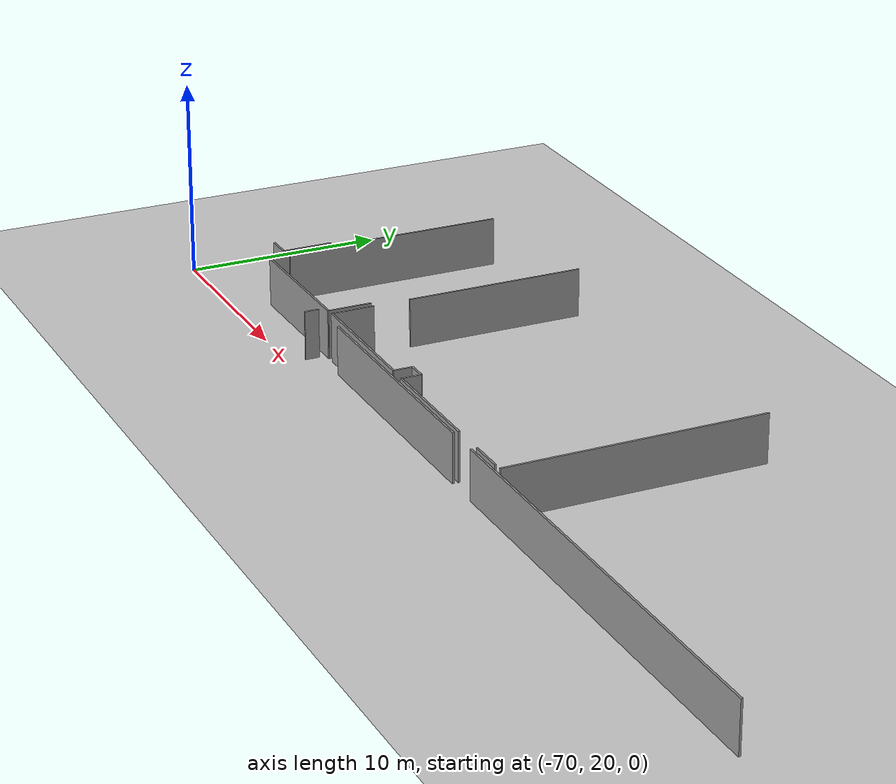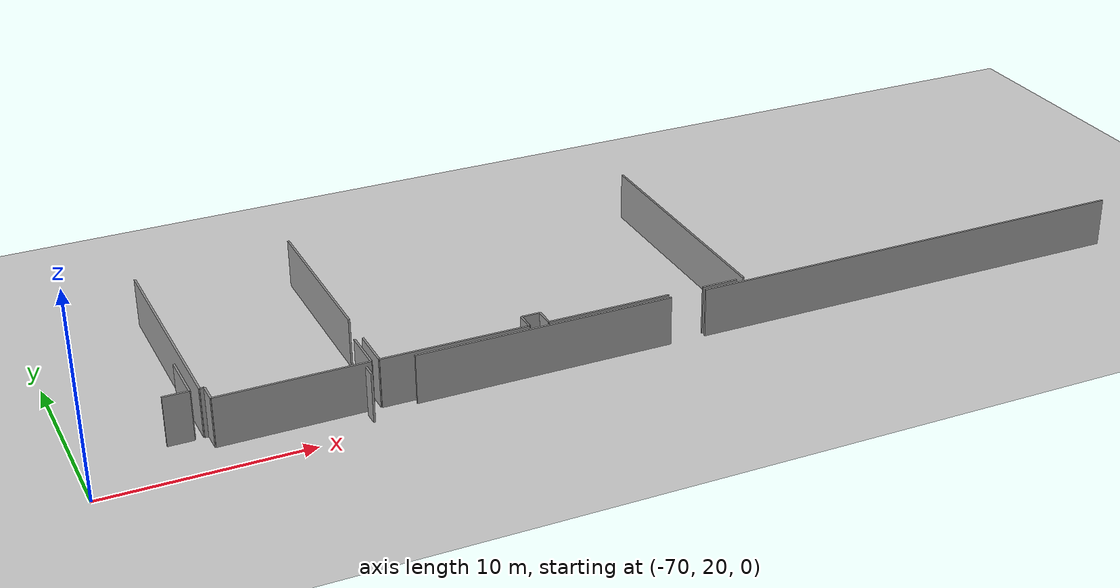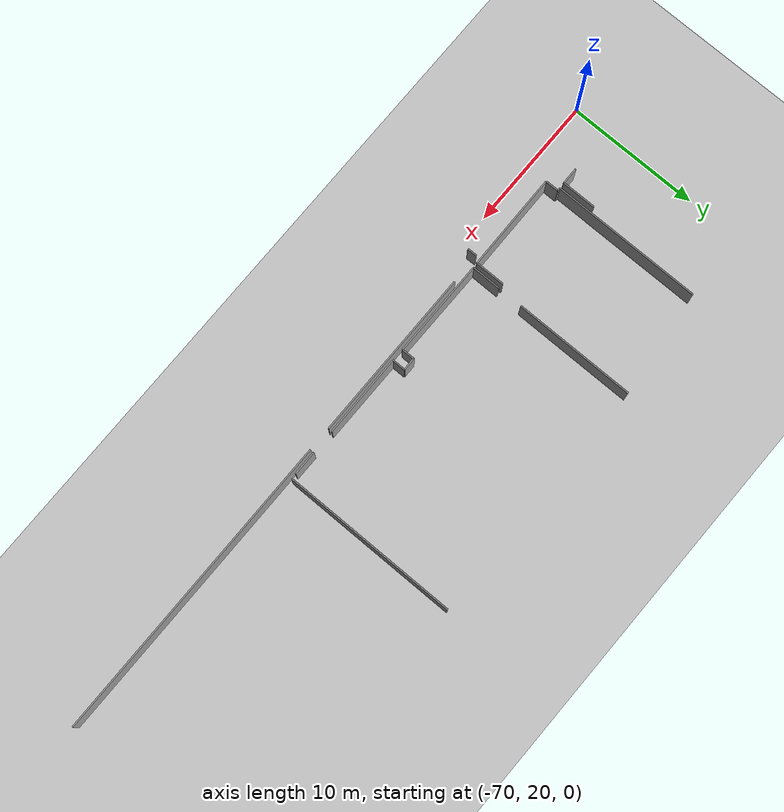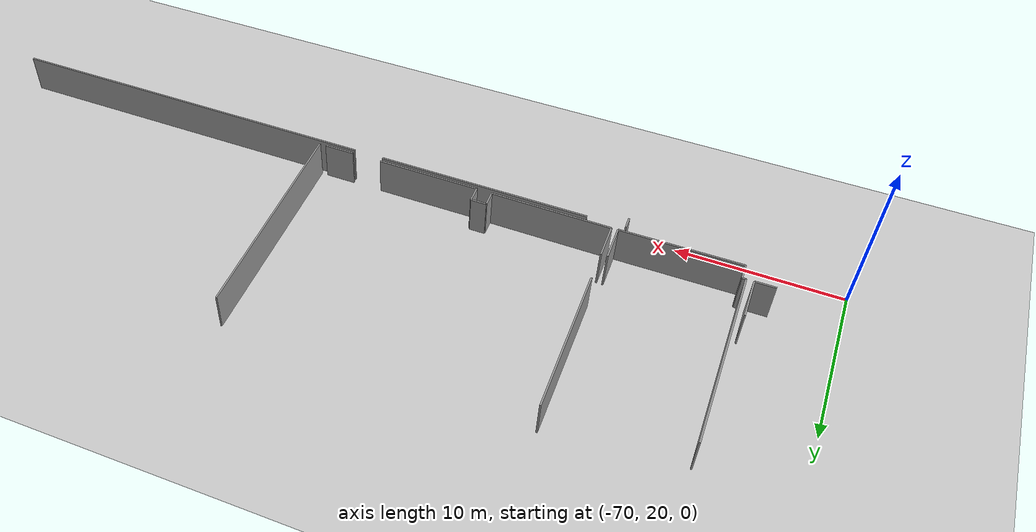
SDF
<sdf version="1.6">
 <world name="default">
  <model name="ground_plane">
   <static>1</static>
   <link name="link">
    <collision name="collision">
     <geometry><plane><normal>0 0 1</normal><size>100 100</size></plane></geometry>
     <surface><friction><ode><mu>100</mu><mu2>50</mu2></ode></friction></surface>
    </collision>
    <visual name="visual">
     <cast_shadows>0</cast_shadows>
     <geometry><plane><normal>0 0 1</normal><size>100 100</size></plane></geometry>
     <material>
      <script><uri>file://media/materials/scripts/gazebo.material</uri><name>Gazebo/Grey</name></script>
     </material>
    </visual>
   </link>
  </model>
  <model name="0510035740_A_40_1_103">
   <static>1</static>
   <link name="Wall_76">
    <collision name="Wall_76_Collision">
     <geometry><box><size>2.59081362664 0.1 2.5</size></box></geometry>
     <pose>1.29540681332 0 1.25 0 0 0</pose>
    </collision>
    <visual name="Wall_76_Visual">
     <pose>1.29540681332 0 1.25 0 0 0</pose>
     <geometry><box><size>2.59081362664 0.1 2.5</size></box></geometry>
     <material>
      <script><uri>file://media/materials/scripts/gazebo.material</uri><name>Gazebo/Grey</name></script>
      <ambient>1 1 1 1</ambient>
     </material>
    </visual>
    <pose>29.1821856183 -24.1574081712 0 0 0 -1.57079632679</pose>
   </link>
   <link name="Wall_77">
    <collision name="Wall_77_Collision">
     <geometry><box><size>1.24743818328 0.1 2.5</size></box></geometry>
     <pose>0.623719091642 0 1.25 0 0 0</pose>
    </collision>
    <visual name="Wall_77_Visual">
     <pose>0.623719091642 0 1.25 0 0 0</pose>
     <geometry><box><size>1.24743818328 0.1 2.5</size></box></geometry>
     <material>
      <script><uri>file://media/materials/scripts/gazebo.material</uri><name>Gazebo/Grey</name></script>
      <ambient>1 1 1 1</ambient>
     </material>
    </visual>
    <pose>29.1821856183 -26.7482217978 0 0 0 3.14159265359</pose>
   </link>
   <link name="Wall_109">
    <collision name="Wall_109_Collision">
     <geometry><box><size>0.713945800524 0.1 2.5</size></box></geometry>
     <pose>0.356972900262 0 1.25 0 0 0</pose>
    </collision>
    <visual name="Wall_109_Visual">
     <pose>0.356972900262 0 1.25 0 0 0</pose>
     <geometry><box><size>0.713945800524 0.1 2.5</size></box></geometry>
     <material>
      <script><uri>file://media/materials/scripts/gazebo.material</uri><name>Gazebo/Grey</name></script>
      <ambient>1 1 1 1</ambient>
     </material>
    </visual>
    <pose>36.8246797333 -28.0504812726 0 0 0 -1.57079632679</pose>
   </link>
   <link name="Wall_112">
    <collision name="Wall_112_Collision">
     <geometry><box><size>12.9149825828 0.1 2.5</size></box></geometry>
     <pose>6.45749129141 0 1.25 0 0 0</pose>
    </collision>
    <visual name="Wall_112_Visual">
     <pose>6.45749129141 0 1.25 0 0 0</pose>
     <geometry><box><size>12.9149825828 0.1 2.5</size></box></geometry>
     <material>
      <script><uri>file://media/materials/scripts/gazebo.material</uri><name>Gazebo/Grey</name></script>
      <ambient>1 1 1 1</ambient>
     </material>
    </visual>
    <pose>39.1319962183 -28.0098729085 0 0 0 0.0</pose>
   </link>
   <link name="Wall_113">
    <collision name="Wall_113_Collision">
     <geometry><box><size>23.3635146539 0.1 2.5</size></box></geometry>
     <pose>11.681757327 0 1.25 0 0 0</pose>
    </collision>
    <visual name="Wall_113_Visual">
     <pose>11.681757327 0 1.25 0 0 0</pose>
     <geometry><box><size>23.3635146539 0.1 2.5</size></box></geometry>
     <material>
      <script><uri>file://media/materials/scripts/gazebo.material</uri><name>Gazebo/Grey</name></script>
      <ambient>1 1 1 1</ambient>
     </material>
    </visual>
    <pose>53.8743551836 -28.0098729085 0 0 0 0.0</pose>
   </link>
   <link name="Wall_118">
    <collision name="Wall_118_Collision">
     <geometry><box><size>1.00124997621 0.1 2.5</size></box></geometry>
     <pose>0.500624988103 0 1.25 0 0 0</pose>
    </collision>
    <visual name="Wall_118_Visual">
     <pose>0.500624988103 0 1.25 0 0 0</pose>
     <geometry><box><size>1.00124997621 0.1 2.5</size></box></geometry>
     <material>
      <script><uri>file://media/materials/scripts/gazebo.material</uri><name>Gazebo/Grey</name></script>
      <ambient>1 1 1 1</ambient>
     </material>
    </visual>
    <pose>29.8512084161 -27.7311980102 0 0 0 1.57079632679</pose>
   </link>
   <link name="Wall_119">
    <collision name="Wall_119_Collision">
     <geometry><box><size>0.222330793196 0.1 2.5</size></box></geometry>
     <pose>0.111165396598 0 1.25 0 0 0</pose>
    </collision>
    <visual name="Wall_119_Visual">
     <pose>0.111165396598 0 1.25 0 0 0</pose>
     <geometry><box><size>0.222330793196 0.1 2.5</size></box></geometry>
     <material>
      <script><uri>file://media/materials/scripts/gazebo.material</uri><name>Gazebo/Grey</name></script>
      <ambient>1 1 1 1</ambient>
     </material>
    </visual>
    <pose>29.8512084161 -26.729948034 0 0 0 3.14159265359</pose>
   </link>
   <link name="Wall_120">
    <collision name="Wall_120_Collision">
     <geometry><box><size>11.4104426946 0.1 2.5</size></box></geometry>
     <pose>5.70522134731 0 1.25 0 0 0</pose>
    </collision>
    <visual name="Wall_120_Visual">
     <pose>5.70522134731 0 1.25 0 0 0</pose>
     <geometry><box><size>11.4104426946 0.1 2.5</size></box></geometry>
     <material>
      <script><uri>file://media/materials/scripts/gazebo.material</uri><name>Gazebo/Grey</name></script>
      <ambient>1 1 1 1</ambient>
     </material>
    </visual>
    <pose>29.6288776229 -26.729948034 0 0 0 1.57079632679</pose>
   </link>
   <link name="Wall_125">
    <collision name="Wall_125_Collision">
     <geometry><box><size>2.21950089783 0.1 2.5</size></box></geometry>
     <pose>1.10975044891 0 1.25 0 0 0</pose>
    </collision>
    <visual name="Wall_125_Visual">
     <pose>1.10975044891 0 1.25 0 0 0</pose>
     <geometry><box><size>2.21950089783 0.1 2.5</size></box></geometry>
     <material>
      <script><uri>file://media/materials/scripts/gazebo.material</uri><name>Gazebo/Grey</name></script>
      <ambient>1 1 1 1</ambient>
     </material>
    </visual>
    <pose>37.1888859984 -25.4616980641 0 0 0 -1.57079632679</pose>
   </link>
   <link name="Wall_126">
    <collision name="Wall_126_Collision">
     <geometry><box><size>7.33784792745 0.1 2.5</size></box></geometry>
     <pose>3.66892396372 0 1.25 0 0 0</pose>
    </collision>
    <visual name="Wall_126_Visual">
     <pose>3.66892396372 0 1.25 0 0 0</pose>
     <geometry><box><size>7.33784792745 0.1 2.5</size></box></geometry>
     <material>
      <script><uri>file://media/materials/scripts/gazebo.material</uri><name>Gazebo/Grey</name></script>
      <ambient>1 1 1 1</ambient>
     </material>
    </visual>
    <pose>37.1888859984 -27.6811989619 0 0 0 -3.13477874362</pose>
   </link>
   <link name="Wall_127">
    <collision name="Wall_127_Collision">
     <geometry><box><size>2.17280127916 0.1 2.5</size></box></geometry>
     <pose>1.08640063958 0 1.25 0 0 0</pose>
    </collision>
    <visual name="Wall_127_Visual">
     <pose>1.08640063958 0 1.25 0 0 0</pose>
     <geometry><box><size>2.17280127916 0.1 2.5</size></box></geometry>
     <material>
      <script><uri>file://media/materials/scripts/gazebo.material</uri><name>Gazebo/Grey</name></script>
      <ambient>1 1 1 1</ambient>
     </material>
    </visual>
    <pose>37.5731426432 -27.6555649321 0 0 0 1.57079632679</pose>
   </link>
   <link name="Wall_128">
    <collision name="Wall_128_Collision">
     <geometry><box><size>9.14855681681 0.1 2.5</size></box></geometry>
     <pose>4.57427840841 0 1.25 0 0 0</pose>
    </collision>
    <visual name="Wall_128_Visual">
     <pose>4.57427840841 0 1.25 0 0 0</pose>
     <geometry><box><size>9.14855681681 0.1 2.5</size></box></geometry>
     <material>
      <script><uri>file://media/materials/scripts/gazebo.material</uri><name>Gazebo/Grey</name></script>
      <ambient>1 1 1 1</ambient>
     </material>
    </visual>
    <pose>37.5731426432 -23.5954899336 0 0 0 1.57079632679</pose>
   </link>
   <link name="Wall_135">
    <collision name="Wall_135_Collision">
     <geometry><box><size>1.8400664962 0.1 2.5</size></box></geometry>
     <pose>0.920033248098 0 1.25 0 0 0</pose>
    </collision>
    <visual name="Wall_135_Visual">
     <pose>0.920033248098 0 1.25 0 0 0</pose>
     <geometry><box><size>1.8400664962 0.1 2.5</size></box></geometry>
     <material>
      <script><uri>file://media/materials/scripts/gazebo.material</uri><name>Gazebo/Grey</name></script>
      <ambient>1 1 1 1</ambient>
     </material>
    </visual>
    <pose>55.7131526684 -27.7240915465 0 0 0 3.14159265359</pose>
   </link>
   <link name="Wall_136">
    <collision name="Wall_136_Collision">
     <geometry><box><size>6.23236867319 0.1 2.5</size></box></geometry>
     <pose>3.11618433659 0 1.25 0 0 0</pose>
    </collision>
    <visual name="Wall_136_Visual">
     <pose>3.11618433659 0 1.25 0 0 0</pose>
     <geometry><box><size>6.23236867319 0.1 2.5</size></box></geometry>
     <material>
      <script><uri>file://media/materials/scripts/gazebo.material</uri><name>Gazebo/Grey</name></script>
      <ambient>1 1 1 1</ambient>
     </material>
    </visual>
    <pose>52.0677905877 -27.7240915465 0 0 0 3.14159265359</pose>
   </link>
   <link name="Wall_137">
    <collision name="Wall_137_Collision">
     <geometry><box><size>0.990336478367 0.1 2.5</size></box></geometry>
     <pose>0.495168239183 0 1.25 0 0 0</pose>
    </collision>
    <visual name="Wall_137_Visual">
     <pose>0.495168239183 0 1.25 0 0 0</pose>
     <geometry><box><size>0.990336478367 0.1 2.5</size></box></geometry>
     <material>
      <script><uri>file://media/materials/scripts/gazebo.material</uri><name>Gazebo/Grey</name></script>
      <ambient>1 1 1 1</ambient>
     </material>
    </visual>
    <pose>45.8354219146 -27.7240915465 0 0 0 1.57079632679</pose>
   </link>
   <link name="Wall_138">
    <collision name="Wall_138_Collision">
     <geometry><box><size>0.954550357544 0.1 2.5</size></box></geometry>
     <pose>0.477275178772 0 1.25 0 0 0</pose>
    </collision>
    <visual name="Wall_138_Visual">
     <pose>0.477275178772 0 1.25 0 0 0</pose>
     <geometry><box><size>0.954550357544 0.1 2.5</size></box></geometry>
     <material>
      <script><uri>file://media/materials/scripts/gazebo.material</uri><name>Gazebo/Grey</name></script>
      <ambient>1 1 1 1</ambient>
     </material>
    </visual>
    <pose>45.8354219146 -26.7337550681 0 0 0 3.14159265359</pose>
   </link>
   <link name="Wall_139">
    <collision name="Wall_139_Collision">
     <geometry><box><size>0.954550357544 0.1 2.5</size></box></geometry>
     <pose>0.477275178772 0 1.25 0 0 0</pose>
    </collision>
    <visual name="Wall_139_Visual">
     <pose>0.477275178772 0 1.25 0 0 0</pose>
     <geometry><box><size>0.954550357544 0.1 2.5</size></box></geometry>
     <material>
      <script><uri>file://media/materials/scripts/gazebo.material</uri><name>Gazebo/Grey</name></script>
      <ambient>1 1 1 1</ambient>
     </material>
    </visual>
    <pose>44.880871557 -26.7337550681 0 0 0 -1.57079632679</pose>
   </link>
   <link name="Wall_140">
    <collision name="Wall_140_Collision">
     <geometry><box><size>7.30780225631 0.1 2.5</size></box></geometry>
     <pose>3.65390112816 0 1.25 0 0 0</pose>
    </collision>
    <visual name="Wall_140_Visual">
     <pose>3.65390112816 0 1.25 0 0 0</pose>
     <geometry><box><size>7.30780225631 0.1 2.5</size></box></geometry>
     <material>
      <script><uri>file://media/materials/scripts/gazebo.material</uri><name>Gazebo/Grey</name></script>
      <ambient>1 1 1 1</ambient>
     </material>
    </visual>
    <pose>44.880871557 -27.6883054257 0 0 0 3.13711242795</pose>
   </link>
   <link name="Wall_173">
    <collision name="Wall_173_Collision">
     <geometry><box><size>13.2431489248 0.1 2.5</size></box></geometry>
     <pose>6.62157446242 0 1.25 0 0 0</pose>
    </collision>
    <visual name="Wall_173_Visual">
     <pose>6.62157446242 0 1.25 0 0 0</pose>
     <geometry><box><size>13.2431489248 0.1 2.5</size></box></geometry>
     <material>
      <script><uri>file://media/materials/scripts/gazebo.material</uri><name>Gazebo/Grey</name></script>
      <ambient>1 1 1 1</ambient>
     </material>
    </visual>
    <pose>56.110099427 -27.7050563758 0 0 0 1.57079632679</pose>
   </link>
   <pose>-93.95 49.6557238758 0 0 0 0</pose>
  </model>
 </world>
</sdf>
